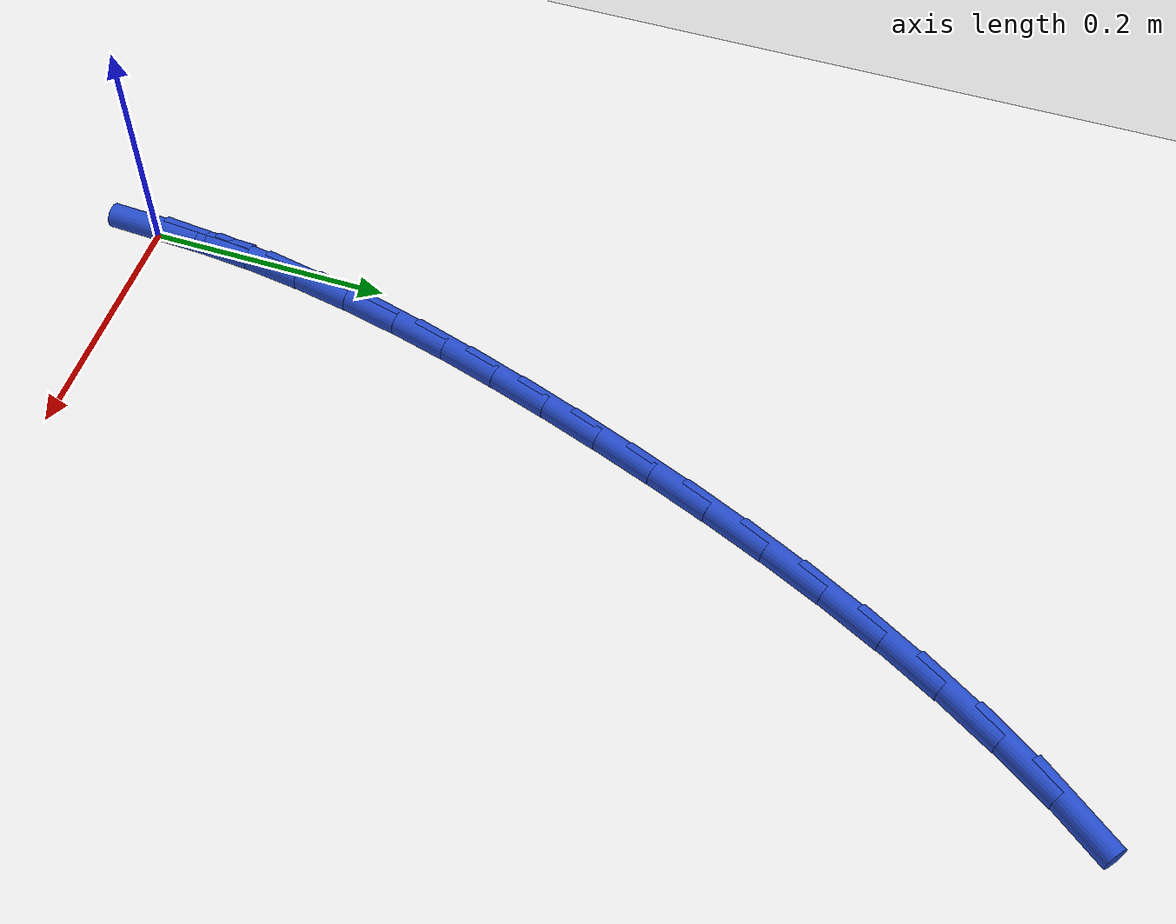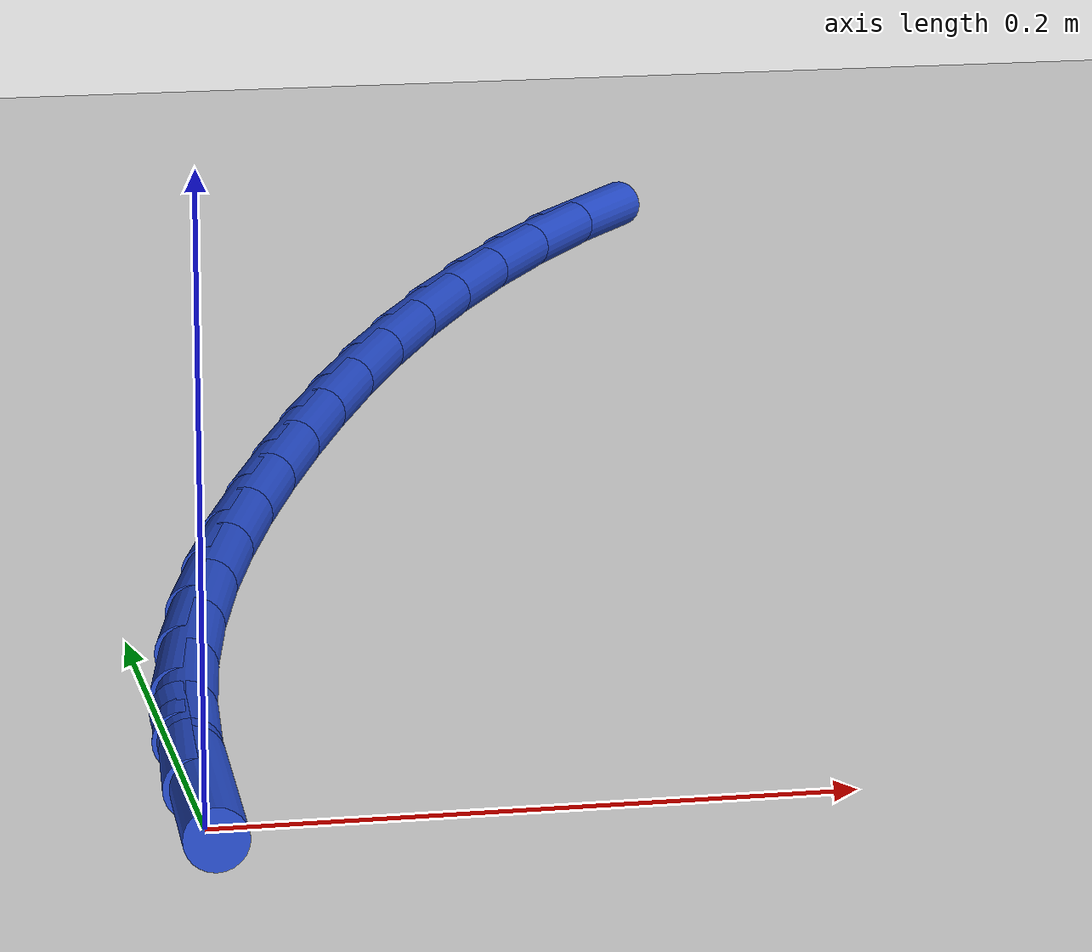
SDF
<sdf version="1.6">
 <world name="default">
  <model name="ground_plane">
   <static>1</static>
   <link name="link">
    <collision name="collision">
     <geometry><plane><normal>0 0 1</normal><size>100 100</size></plane></geometry>
     <surface><friction><ode><mu>100</mu><mu2>50</mu2></ode></friction></surface>
    </collision>
    <visual name="visual">
     <cast_shadows>0</cast_shadows>
     <geometry><plane><normal>0 0 1</normal><size>100 100</size></plane></geometry>
     <material>
      <script><uri>file://media/materials/scripts/gazebo.material</uri><name>Gazebo/WhiteGlow</name></script>
     </material>
    </visual>
   </link>
  </model>
  <model name="line">
   <link name="link_1">
    <pose>0.00221797405301965 0.047595367581147206 0.01 0 1.57 1.473411289266102</pose>
    <collision name="collision">
     <geometry><cylinder><radius>0.01</radius><length>0.08</length></cylinder></geometry>
    </collision>
    <visual name="visual">
     <material>
      <script><name>Gazebo/Blue</name><uri>file://media/materials/scripts/gazebo.material</uri></script>
     </material>
     <geometry><cylinder><radius>0.01</radius><length>0.08</length></cylinder></geometry>
    </visual>
   </link>
   <link name="link_2">
    <pose>0.0068180106514134425 0.09468150627326125 0.01 0 1.57 1.4257906642017169</pose>
    <collision name="collision">
     <geometry><cylinder><radius>0.01</radius><length>0.08</length></cylinder></geometry>
    </collision>
    <visual name="visual">
     <material>
      <script><name>Gazebo/Blue</name><uri>file://media/materials/scripts/gazebo.material</uri></script>
     </material>
     <geometry><cylinder><radius>0.01</radius><length>0.08</length></cylinder></geometry>
    </visual>
   </link>
   <link name="link_3">
    <pose>0.013643770705452916 0.1414234872267543 0.01 0 1.57 1.3820355925854608</pose>
    <collision name="collision">
     <geometry><cylinder><radius>0.01</radius><length>0.08</length></cylinder></geometry>
    </collision>
    <visual name="visual">
     <material>
      <script><name>Gazebo/Blue</name><uri>file://media/materials/scripts/gazebo.material</uri></script>
     </material>
     <geometry><cylinder><radius>0.01</radius><length>0.08</length></cylinder></geometry>
    </visual>
   </link>
   <link name="link_4">
    <pose>0.02253891512540955 0.18798638159203845 0.01 0 1.57 1.342648854685721</pose>
    <collision name="collision">
     <geometry><cylinder><radius>0.01</radius><length>0.08</length></cylinder></geometry>
    </collision>
    <visual name="visual">
     <material>
      <script><name>Gazebo/Blue</name><uri>file://media/materials/scripts/gazebo.material</uri></script>
     </material>
     <geometry><cylinder><radius>0.01</radius><length>0.08</length></cylinder></geometry>
    </visual>
   </link>
   <link name="link_5">
    <pose>0.03334710482155483 0.23453526051952595 0.01 0 1.57 1.3079645940863656</pose>
    <collision name="collision">
     <geometry><cylinder><radius>0.01</radius><length>0.08</length></cylinder></geometry>
    </collision>
    <visual name="visual">
     <material>
      <script><name>Gazebo/Blue</name><uri>file://media/materials/scripts/gazebo.material</uri></script>
     </material>
     <geometry><cylinder><radius>0.01</radius><length>0.08</length></cylinder></geometry>
    </visual>
   </link>
   <link name="link_6">
    <pose>0.04591200070416027 0.28123519515962897 0.01 0 1.57 1.2781604872505696</pose>
    <collision name="collision">
     <geometry><cylinder><radius>0.01</radius><length>0.08</length></cylinder></geometry>
    </collision>
    <visual name="visual">
     <material>
      <script><name>Gazebo/Blue</name><uri>file://media/materials/scripts/gazebo.material</uri></script>
     </material>
     <geometry><cylinder><radius>0.01</radius><length>0.08</length></cylinder></geometry>
    </visual>
   </link>
   <link name="link_7">
    <pose>0.06007726368349735 0.3282512566627597 0.01 0 1.57 1.2532796625277816</pose>
    <collision name="collision">
     <geometry><cylinder><radius>0.01</radius><length>0.08</length></cylinder></geometry>
    </collision>
    <visual name="visual">
     <material>
      <script><name>Gazebo/Blue</name><uri>file://media/materials/scripts/gazebo.material</uri></script>
     </material>
     <geometry><cylinder><radius>0.01</radius><length>0.08</length></cylinder></geometry>
    </visual>
   </link>
   <link name="link_8">
    <pose>0.07568655466983756 0.3757485161793304 0.01 0 1.57 1.2331978213480939</pose>
    <collision name="collision">
     <geometry><cylinder><radius>0.01</radius><length>0.08</length></cylinder></geometry>
    </collision>
    <visual name="visual">
     <material>
      <script><name>Gazebo/Blue</name><uri>file://media/materials/scripts/gazebo.material</uri></script>
     </material>
     <geometry><cylinder><radius>0.01</radius><length>0.08</length></cylinder></geometry>
    </visual>
   </link>
   <link name="link_9">
    <pose>0.09258527475787279 0.42388791957566047 0.01 0 1.57 1.2147229975062166</pose>
    <collision name="collision">
     <geometry><cylinder><radius>0.01</radius><length>0.08</length></cylinder></geometry>
    </collision>
    <visual name="visual">
     <material>
      <script><name>Gazebo/Blue</name><uri>file://media/materials/scripts/gazebo.material</uri></script>
     </material>
     <geometry><cylinder><radius>0.01</radius><length>0.08</length></cylinder></geometry>
    </visual>
   </link>
   <link name="link_10">
    <pose>0.11070888097141358 0.4726169259821213 0.01 0 1.57 1.1932077386899205</pose>
    <collision name="collision">
     <geometry><cylinder><radius>0.01</radius><length>0.08</length></cylinder></geometry>
    </collision>
    <visual name="visual">
     <material>
      <script><name>Gazebo/Blue</name><uri>file://media/materials/scripts/gazebo.material</uri></script>
     </material>
     <geometry><cylinder><radius>0.01</radius><length>0.08</length></cylinder></geometry>
    </visual>
   </link>
   <link name="link_11">
    <pose>0.13012473468402097 0.5215703018573088 0.01 0 1.57 1.1680369226061018</pose>
    <collision name="collision">
     <geometry><cylinder><radius>0.01</radius><length>0.08</length></cylinder></geometry>
    </collision>
    <visual name="visual">
     <material>
      <script><name>Gazebo/Blue</name><uri>file://media/materials/scripts/gazebo.material</uri></script>
     </material>
     <geometry><cylinder><radius>0.01</radius><length>0.08</length></cylinder></geometry>
    </visual>
   </link>
   <link name="link_12">
    <pose>0.150910691181727 0.5703579367733892 0.01 0 1.57 1.1388485776382675</pose>
    <collision name="collision">
     <geometry><cylinder><radius>0.01</radius><length>0.08</length></cylinder></geometry>
    </collision>
    <visual name="visual">
     <material>
      <script><name>Gazebo/Blue</name><uri>file://media/materials/scripts/gazebo.material</uri></script>
     </material>
     <geometry><cylinder><radius>0.01</radius><length>0.08</length></cylinder></geometry>
    </visual>
   </link>
   <link name="link_13">
    <pose>0.17314460575056412 0.6185897203025308 0.01 0 1.57 1.1051743146297641</pose>
    <collision name="collision">
     <geometry><cylinder><radius>0.01</radius><length>0.08</length></cylinder></geometry>
    </collision>
    <visual name="visual">
     <material>
      <script><name>Gazebo/Blue</name><uri>file://media/materials/scripts/gazebo.material</uri></script>
     </material>
     <geometry><cylinder><radius>0.01</radius><length>0.08</length></cylinder></geometry>
    </visual>
   </link>
   <link name="link_14">
    <pose>0.19690433367656446 0.6658755420169 0.01 0 1.57 1.0664333350519362</pose>
    <collision name="collision">
     <geometry><cylinder><radius>0.01</radius><length>0.08</length></cylinder></geometry>
    </collision>
    <visual name="visual">
     <material>
      <script><name>Gazebo/Blue</name><uri>file://media/materials/scripts/gazebo.material</uri></script>
     </material>
     <geometry><cylinder><radius>0.01</radius><length>0.08</length></cylinder></geometry>
    </visual>
   </link>
   <link name="link_15">
    <pose>0.22226773024576033 0.7118252914886641 0.01 0 1.57 1.0219274654599304</pose>
    <collision name="collision">
     <geometry><cylinder><radius>0.01</radius><length>0.08</length></cylinder></geometry>
    </collision>
    <visual name="visual">
     <material>
      <script><name>Gazebo/Blue</name><uri>file://media/materials/scripts/gazebo.material</uri></script>
     </material>
     <geometry><cylinder><radius>0.01</radius><length>0.08</length></cylinder></geometry>
    </visual>
   </link>
   <link name="link_16">
    <pose>0.24931265074418407 0.7560488582899912 0.01 0 1.57 0.9708422088777604</pose>
    <collision name="collision">
     <geometry><cylinder><radius>0.01</radius><length>0.08</length></cylinder></geometry>
    </collision>
    <visual name="visual">
     <material>
      <script><name>Gazebo/Blue</name><uri>file://media/materials/scripts/gazebo.material</uri></script>
     </material>
     <geometry><cylinder><radius>0.01</radius><length>0.08</length></cylinder></geometry>
    </visual>
   </link>
   <link name="link_17">
    <pose>0.27811695045786783 0.7981561319930478 0.01 0 1.57 0.9122619753968884</pose>
    <collision name="collision">
     <geometry><cylinder><radius>0.01</radius><length>0.08</length></cylinder></geometry>
    </collision>
    <visual name="visual">
     <material>
      <script><name>Gazebo/Blue</name><uri>file://media/materials/scripts/gazebo.material</uri></script>
     </material>
     <geometry><cylinder><radius>0.01</radius><length>0.08</length></cylinder></geometry>
    </visual>
   </link>
   <link name="link_150">
    <pose>1.9081958235744878e-17 -4.163336342344337e-17 0.01 0 1.57 1.5236065049790386</pose>
    <collision name="collision">
     <geometry><cylinder><radius>0.01</radius><length>0.08</length></cylinder></geometry>
    </collision>
    <visual name="visual">
     <material>
      <script><name>Gazebo/Blue</name><uri>file://media/materials/scripts/gazebo.material</uri></script>
     </material>
     <geometry><cylinder><radius>0.01</radius><length>0.08</length></cylinder></geometry>
    </visual>
   </link>
   <link name="link_151">
    <pose>0.002244002294075082 0.04751737245538573 0.01 0 1.57 1.5236065049790388</pose>
    <collision name="collision">
     <geometry><cylinder><radius>0.01</radius><length>0.08</length></cylinder></geometry>
    </collision>
    <visual name="visual">
     <material>
      <script><name>Gazebo/Blue</name><uri>file://media/materials/scripts/gazebo.material</uri></script>
     </material>
     <geometry><cylinder><radius>0.01</radius><length>0.08</length></cylinder></geometry>
    </visual>
   </link>
  </model>
 </world>
</sdf>
